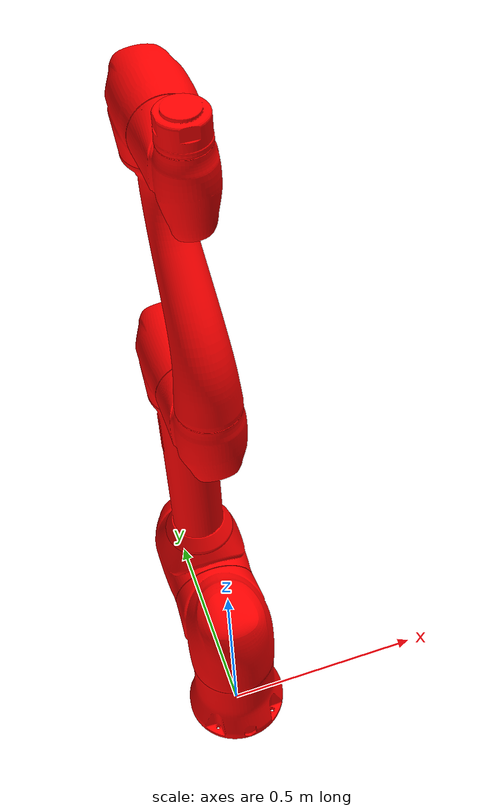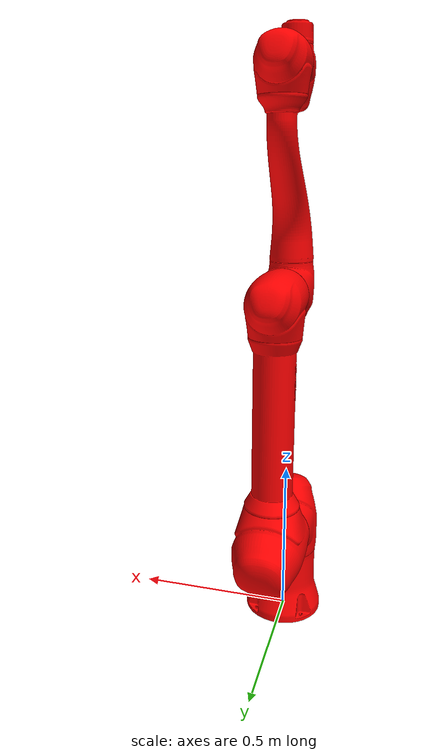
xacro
<?xml version="1.0"?>
<robot xmlns:xacro="http://www.ros.org/wiki/xacro" name="h2515">

  <!-- Args -->
  <xacro:arg name="mode"                default="virtual"/>
  <xacro:arg name="color"               default="white"/>
  <xacro:arg name="namespace"           default=""/>

  <!-- gripper control argument -->
  <xacro:arg name="gripper"             default="none"/>         <!-- none | robotique -->
  <xacro:arg name="gripper_prefix"      default=""/>             <!-- ex) dsr01_ -->
  <xacro:arg name="gripper_parent_link" default="link_6"/>

  <xacro:arg name="use_gazebo"          default="false"/>
  <xacro:arg name="use_mujoco"          default="false"/>
  <xacro:arg name="mujoco_model"        default=""/>
  <xacro:arg name="headless"            default="false"/>
  <xacro:arg name="host"                default=""/>
  <xacro:arg name="port"                default=""/>
  <xacro:arg name="rt_host"             default=""/>
  <xacro:arg name="rt_thread_policy"  default=""/>
  <xacro:arg name="rt_thread_priority"  default=""/>
  <xacro:arg name="mode"                default=""/>
  <xacro:arg name="model"               default=""/>
  <xacro:arg name="update_rate"         default=""/>
  <xacro:arg name="simple"               default="false"/>

  <!-- Local properties -->
  <xacro:property name="cr"             value="$(arg color)"/>
  <xacro:property name="gr"             value="$(arg gripper)"/>
  <xacro:property name="gz"             value="$(arg use_gazebo)"/>
  <xacro:property name="mj"             value="$(arg use_mujoco)"/>
  <xacro:property name="host"           value="$(arg host)"/>
  <xacro:property name="rt_host"        value="$(arg rt_host)"/>
  <xacro:property name="rt_thread_policy" value="$(arg rt_thread_policy)"/>
  <xacro:property name="rt_thread_priority" value="$(arg rt_thread_priority)"/>
  <xacro:property name="port"           value="$(arg port)"/>
  <xacro:property name="mode"           value="$(arg mode)"/>
  <xacro:property name="model"          value="$(arg model)"/>
  <xacro:property name="update_rate"    value="$(arg update_rate)"/>

  <!-- Visual -->
  <xacro:if value="${cr == 'white'}">
    <xacro:include filename="$(find dsr_description2)/xacro/macro.h2515.white.xacro"/>
  </xacro:if>
  <xacro:if value="${cr == 'blue'}">
    <xacro:include filename="$(find dsr_description2)/xacro/macro.h2515.blue.xacro"/>
  </xacro:if>

  <xacro:h2515 namespace="$(arg namespace)" simple="$(arg simple)"/>

  <xacro:unless value="$(arg simple)">
  <!-- World -->
  <link name="world"/>
  <joint name="world_fixed" type="fixed">
    <origin xyz="0 0 0" rpy="0 0 0"/>
    <parent link="world"/>
    <child  link="base_link"/>
  </joint>

  <!-- Gazebo -->
  <xacro:if value="${gz}">
    <xacro:include filename="$(find dsr_description2)/ros2_control/h2515.gz_ros2_control.xacro"/>
    <xacro:h2515_gz_ros2_control
      namespace="$(arg namespace)"
      update_rate="${update_rate}"
    />
  </xacro:if>
  <!-- MuJoCo -->
  <xacro:if value="${mj and not gz}">
    <xacro:include filename="$(find dsr_description2)/ros2_control/h2515.mj_ros2_control.xacro"/>
    <xacro:h2515_mj_ros2_control
      namespace="$(arg namespace)"
      gripper="$(arg gripper)"
      mujoco_model="$(arg mujoco_model)"
      headless="$(arg headless)"
      update_rate="${update_rate}"
    />
  </xacro:if>
  <!-- Default ros2_control -->
  <xacro:unless value="${gz or mj}">
    <xacro:include filename="$(find dsr_description2)/ros2_control/h2515.ros2_control.xacro" />
    <xacro:h2515_ros2_control
      name="h2515"
      host="${host}"
      rt_host="${rt_host}"
      rt_thread_policy="${rt_thread_policy}"
      rt_thread_priority="${rt_thread_priority}"
      port="${port}"
      mode="${mode}"
      model="${model}"
      update_rate="${update_rate}"
    />
  </xacro:unless>

  <xacro:if value="${gr == 'robotiq_2f85'}">

    <xacro:include filename="$(find dsr_description2)/gripper/robotiq.xacro"/>
    <xacro:robotiq_85
      parent="$(arg gripper_parent_link)"
      prefix="$(arg gripper_prefix)"/>

    <xacro:include filename="$(find dsr_description2)/gripper/robotiq.ros2_control.xacro"/>
      <xacro:robotiq_gripper_system
      mode="$(arg mode)"
      joint_name="$(arg gripper_prefix)robotiq_85_left_knuckle_joint"
      system_name="$(arg gripper_prefix)robotiq_gripper_system"
      pos_min="0.0"
      pos_max="0.8"
      init_pos="0.0"
      speed_mult="1.0"
      force_mult="0.5"
      max_speed="0.150"
      max_force="235.0"
      mock_sensor_commands="true" />

  </xacro:if>

  </xacro:unless>
</robot>

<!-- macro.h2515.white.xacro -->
<robot name="h2515" xmlns:xacro="http://www.ros.org/wiki/xacro">
	<xacro:include filename="$(find dsr_description2)/config/macro.gazebo.xacro" />
	<xacro:include filename="$(find dsr_description2)/config/macro.transmission.xacro" />
	<xacro:include filename="$(find dsr_description2)/config/macro.materials.xacro" />
	<xacro:macro name="h2515" params="namespace simple:=false">
		<xacro:dsr_materials />
		<link name="base_link">
			<inertial>
				<mass value="8.537"/>
				<origin xyz="-1.8e-05   -0.002377    0.095608"/>
				<inertia ixx="0.078238" ixy="3.026e-05" ixz="1.7626e-05" iyy="0.077909"
					iyz="-0.00099645"
					izz="0.068138"/>
				</inertial>
				<collision>
					<origin rpy="0 0 0" xyz="0 0 0" />
					<geometry>
						<mesh filename="package://dsr_description2/meshes/h2515_collision/H2515_0_0.dae" scale="0.001 0.001 0.001" />
					</geometry>
				</collision>
				<visual>
					<origin rpy="0 0 0" xyz="0 0 0" />
					<geometry>
						<mesh filename="package://dsr_description2/meshes/h2515_blue/H2515_0_0.dae" scale="0.001 0.001 0.001" />
					</geometry>
				</visual>
			</link>
		<!-- joint 1 -->
		<joint name="joint_1" type="revolute">
			<parent link="base_link" />
			<child link="link_1" />
			<origin rpy="0 0 0" xyz="0 0 0.3443" />
			<axis xyz="0 0 1" />
			<limit effort="372" lower="-6.2832" upper="6.2832" velocity="1.7453"/>
			<dynamics friction="0" />
		</joint>
		<link name="link_1">
			<inertial>
				<mass value="20.253"/>
				<origin xyz="-5.3e-05     0.11854   -0.059979"/>
				<inertia ixx="0.52872" ixy="-5.7923e-05" ixz="-7.341e-06" iyy="0.27999" iyz="-0.149"
					izz="0.34741"/>
			</inertial>
            <collision>
				<origin rpy="0 0 0" xyz="0 0 0" />
				<geometry>
					<mesh filename="package://dsr_description2/meshes/h2515_collision/H2515_1_0.dae" scale="0.001 0.001 0.001" />
				</geometry>
			</collision>
			<visual>
				<origin rpy="0 0 0" xyz="0 0 0" />
				<geometry>
					<mesh filename="package://dsr_description2/meshes/h2515_white/H2515_1_0.dae" scale="0.001 0.001 0.001" />
				</geometry>
			</visual>
		</link>
		<!-- joint2 -->
		<joint name="joint_2" type="revolute">
			<parent link="link_1" />
			<child link="link_2" />
			<origin rpy="0 -1.571 -1.571" xyz="0 0.0099 0" />
			<axis xyz="0 0 1" />
			<limit effort="372" lower="-2.1817" upper="2.1817" velocity="1.3963"/>
			<dynamics friction="0" />
		</joint>
		<link name="link_2">
			<inertial>
				<mass value="28.111"/>
				<origin xyz="0.35729    -2.4e-05     0.22527"/>
				<inertia ixx="0.15204" ixy="-0.00010891" ixz="0.107" iyy="2.5113" iyz="-5.2156e-05"
					izz="2.4697"/>
			</inertial>
            <collision>
				<origin rpy="0 0 0" xyz="0 0 0" />
				<geometry>
					<mesh filename="package://dsr_description2/meshes/h2515_collision/H2515_2_0.dae" scale="0.001 0.001 0.001" />
				</geometry>
			</collision>
			<visual>
				<origin rpy="0 0 0" xyz="0 0 0" />
				<geometry>
					<mesh filename="package://dsr_description2/meshes/h2515_white/H2515_2_0.dae" scale="0.001 0.001 0.001" />
				</geometry>
			</visual>
			<collision>
				<origin rpy="0 0 0" xyz="0 0 0" />
				<geometry>
					<mesh filename="package://dsr_description2/meshes/h2515_collision/H2515_2_1.dae" scale="0.001 0.001 0.001" />
				</geometry>
			</collision>
			<visual>
				<origin rpy="0 0 0" xyz="0 0 0" />
				<geometry>
					<mesh filename="package://dsr_description2/meshes/h2515_white/H2515_2_1.dae" scale="0.001 0.001 0.001" />
				</geometry>
			</visual>
			<collision>
				<origin rpy="0 0 0" xyz="0 0 0" />
				<geometry>
					<mesh filename="package://dsr_description2/meshes/h2515_collision/H2515_2_2.dae" scale="0.001 0.001 0.001" />
				</geometry>
			</collision>
			<visual>
				<origin rpy="0 0 0" xyz="0 0 0" />
				<geometry>
					<mesh filename="package://dsr_description2/meshes/h2515_white/H2515_2_2.dae" scale="0.001 0.001 0.001" />
				</geometry>
			</visual>
		</link>
		<!-- joint3 -->
		<joint name="joint_3" type="revolute">
			<parent link="link_2" />
			<child link="link_3" />
			<origin rpy="0 0 1.571" xyz="0.7595 0 0" />
			<axis xyz="0 0 1" />
			<limit effort="372" lower="-2.7925" upper="2.7925" velocity="1.7453"/>
			<dynamics friction="0" />
		</joint>
		<link name="link_3">
			<inertial>
				<mass value="6.421"/>
				<origin xyz="-6.5e-05  -0.0074124    0.049527"/>
				<inertia ixx="0.042338" ixy="2.9627e-05" ixz="-1.1919e-05" iyy="0.039418"
					iyz="-0.0029936"
					izz="0.028103"/>
			</inertial>
			<collision>
				<origin rpy="0 0 0" xyz="0 0 0" />
				<geometry>
					<mesh filename="package://dsr_description2/meshes/h2515_collision/H2515_3_0.dae" scale="0.001 0.001 0.001" />
				</geometry>
			</collision>
            <visual>
				<origin rpy="0 0 0" xyz="0 0 0" />
				<geometry>
					<mesh filename="package://dsr_description2/meshes/h2515_white/H2515_3_0.dae" scale="0.001 0.001 0.001" />
				</geometry>
			</visual>
		</link>
		<!-- joint4 -->
		<joint name="joint_4" type="revolute">
			<parent link="link_3" />
			<child link="link_4" />
			<origin rpy="1.571 0 0" xyz="0 -0.6195 0" />
			<axis xyz="0 0 1" />
			<limit effort="163" lower="-6.2832" upper="6.2832" velocity="3.1416"/>
			<dynamics friction="0" />
		</joint>
		<link name="link_4">
			<inertial>
				<mass value="7.295"/>
				<origin xyz="7.9e-05     0.13068    -0.17947"/>
				<inertia ixx="0.41598" ixy="-6.9414e-05" ixz="-0.00010777" iyy="0.36426" iyz="-0.12499"
					izz="0.075756"/>
			</inertial>
            <collision>
				<origin rpy="0 0 0" xyz="0 0 0" />
				<geometry>
					<mesh filename="package://dsr_description2/meshes/h2515_collision/H2515_4_0.dae" scale="0.001 0.001 0.001" />
				</geometry>
			</collision>
			<visual>
				<origin rpy="0 0 0" xyz="0 0 0" />
				<geometry>
					<mesh filename="package://dsr_description2/meshes/h2515_white/H2515_4_0.dae" scale="0.001 0.001 0.001" />
				</geometry>
			</visual>
			<collision>
				<origin rpy="0 0 0" xyz="0 0 0" />
				<geometry>
					<mesh filename="package://dsr_description2/meshes/h2515_collision/H2515_4_1.dae" scale="0.001 0.001 0.001" />
				</geometry>
			</collision>
			<visual>
				<origin rpy="0 0 0" xyz="0 0 0" />
				<geometry>
					<mesh filename="package://dsr_description2/meshes/h2515_white/H2515_4_1.dae" scale="0.001 0.001 0.001" />
				</geometry>
			</visual>
		</link>
		<!-- joint5 -->
		<joint name="joint_5" type="revolute">
			<parent link="link_4" />
			<child link="link_5" />
			<origin rpy="-1.571 0 0" xyz="0 0 0" />
			<axis xyz="0 0 1" />
			<limit effort="96" lower="-6.2832" upper="6.2832" velocity="3.1416"/>
			<dynamics friction="0" />
		</joint>
		<link name="link_5">
			<inertial>
				<mass value="4.099"/>
				<origin xyz="-6.1e-05   -0.000589    0.048788"/>
				<inertia ixx="0.024784" ixy="2.2652e-05" ixz="-5.8056e-06" iyy="0.024229"
					iyz="5.8109e-05"
					izz="0.012218"/>
			</inertial>
            <collision>
				<origin rpy="0 0 0" xyz="0 0 0" />
				<geometry>
					<mesh filename="package://dsr_description2/meshes/h2515_collision/H2515_5_0.dae" scale="0.001 0.001 0.001" />
				</geometry>
			</collision>
			<visual>
				<origin rpy="0 0 0" xyz="0 0 0" />
				<geometry>
					<mesh filename="package://dsr_description2/meshes/h2515_white/H2515_5_0.dae" scale="0.001 0.001 0.001" />
				</geometry>
			</visual>
		</link>
		<!-- joint6 -->
		<joint name="joint_6" type="revolute">
			<parent link="link_5" />
			<child link="link_6" />
			<origin rpy="1.571 0 0" xyz="0 -0.121 0" />
			<axis xyz="0 0 1" />
			<limit effort="50" lower="-6.2832" upper="6.2832" velocity="3.927"/>
			<dynamics friction="0" />
		</joint>
		<link name="link_6">
			<inertial>
				<mass value="0.897"/>
				<origin xyz="-3.3e-05     1.2e-05   -0.049444"/>
				<inertia ixx="0.0081209" ixy="7.9444e-06" ixz="7.3951e-06" iyy="0.0071981"
					iyz="4.2669e-06"
					izz="0.0079983"/>
			</inertial>
			<collision>
				<origin rpy="0 0 0" xyz="0 0 0" />
				<geometry>
					<mesh filename="package://dsr_description2/meshes/h2515_collision/H2515_6_0.dae" scale="0.001 0.001 0.001" />
				</geometry>
			</collision>
			<visual>
				<origin rpy="0 0 0" xyz="0 0 0" />
				<geometry>
					<mesh filename="package://dsr_description2/meshes/h2515_white/H2515_6_0.dae" scale="0.001 0.001 0.001" />
				</geometry>
			</visual>
		</link>
		<xacro:unless value="${simple}">
		<xacro:dsr_transmission />
		<xacro:dsr_gazebo namespace="${namespace}" />
	</xacro:unless>
	</xacro:macro>
</robot>

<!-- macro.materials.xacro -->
<robot name="dsr_materials" xmlns:xacro="http://www.ros.org/wiki/xacro">
	<xacro:macro name="dsr_materials">
		<material name="black">
			<color rgba="0.0 0.0 0.0 1.0" />
		</material>
		<material name="white">
			<color rgba="1.0 1.0 1.0 1.0" />
		</material>
		<material name="orange">
			<color rgba="1.0 0.4 0.0 1.0" />
		</material>
		<material name="dr_gray">
			<color rgba="0.490 0.490 0.486 1.0" />
		</material>
		<material name="dr_white">
			<color rgba="0.941 0.941 0.941 1.0" />
		</material>
		<material name="dr_blue">
			<color rgba="0 0 0.15 1" />
		</material>
	</xacro:macro>
</robot>
